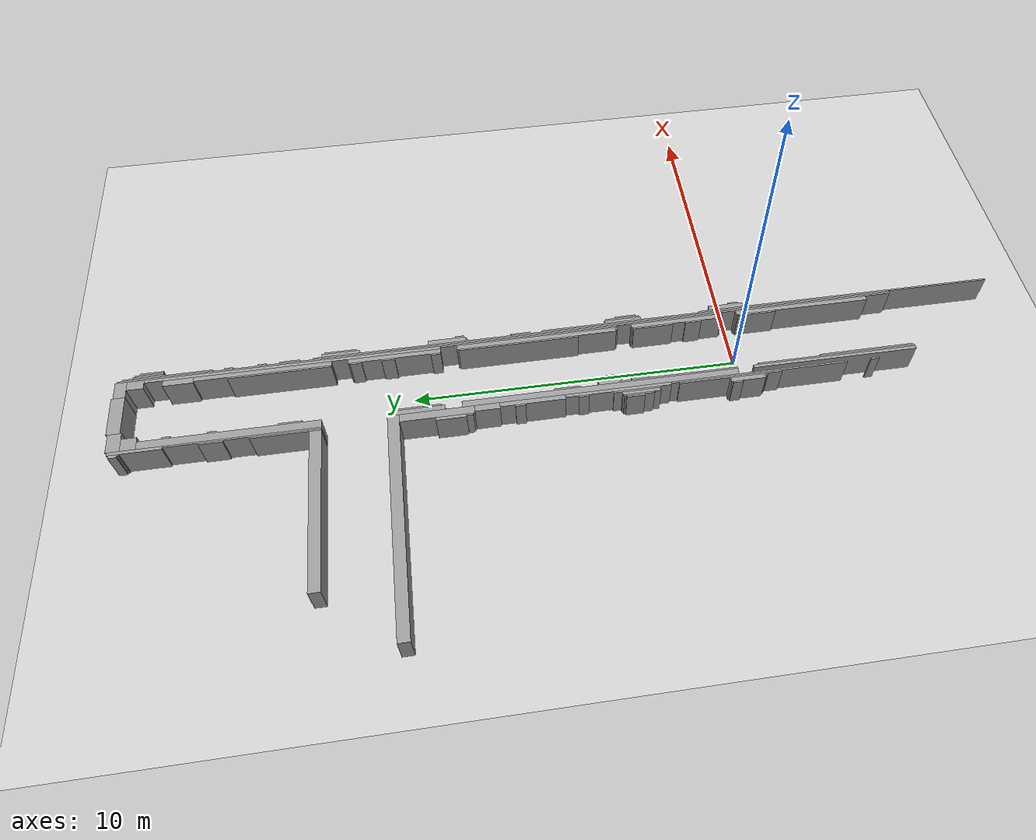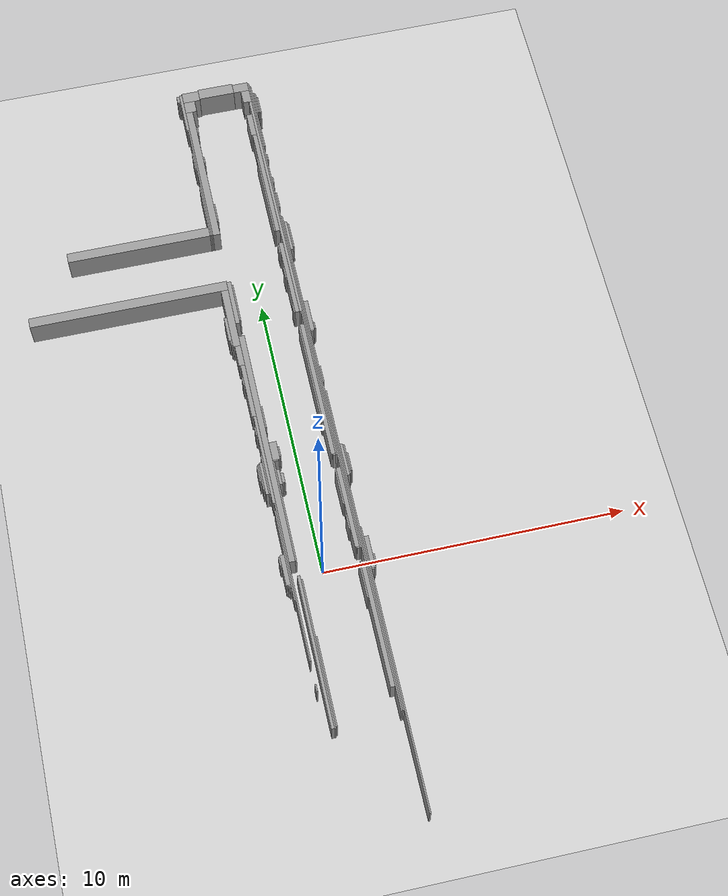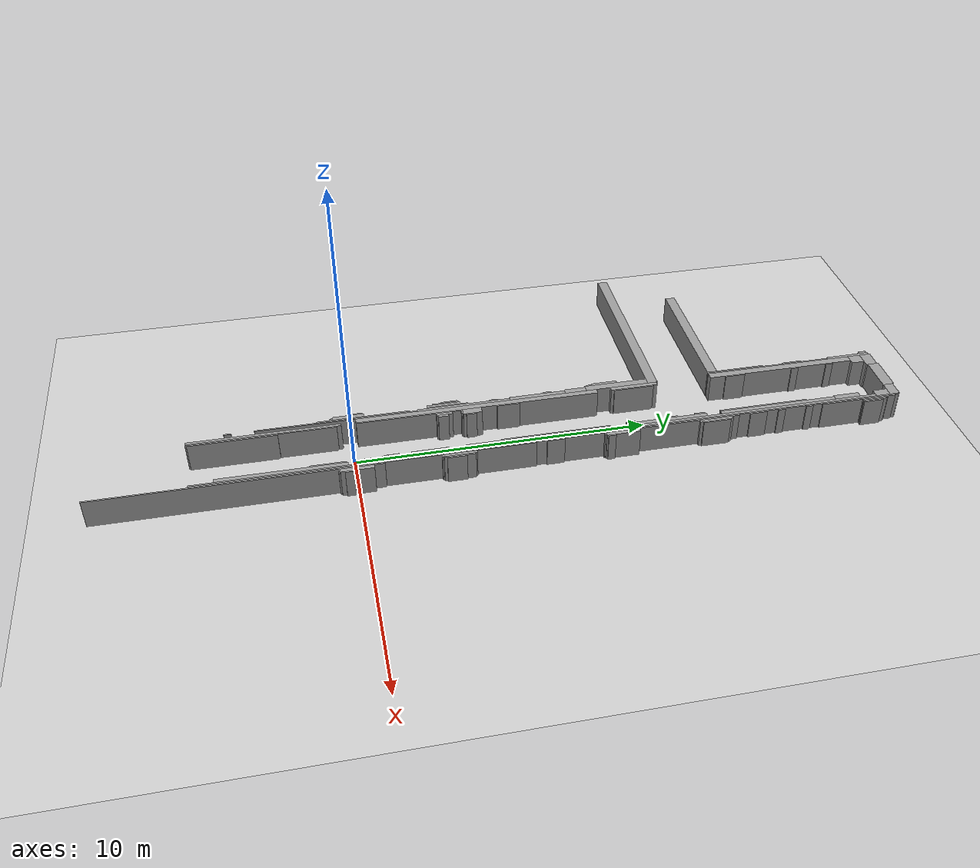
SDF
<sdf version="1.6">
 <world name="default">
  <include><uri>model://ground_plane</uri></include>
  <include><uri>model://sun</uri></include>
  <model name="wall_14">
   <static>1</static>
   <pose>0.07500000000000284 18.600000000000005 0.5 0 0 0</pose>
   <link name="link">
    <collision name="collision"><geometry><box><size>1.25 0.4 1.0</size></box></geometry></collision>
    <visual name="visual">
     <geometry><box><size>1.25 0.4 1.0</size></box></geometry>
     <material>
      <script><uri>file://media/materials/scripts/gazebo.material</uri><name>Gazebo/Grey</name></script>
     </material>
    </visual>
   </link>
  </model>
  <model name="wall_15">
   <static>1</static>
   <pose>-0.8499999999999943 18.55 0.5 0 0 0</pose>
   <link name="link">
    <collision name="collision">
     <geometry><box><size>0.6000000000000001 0.4 1.0</size></box></geometry>
    </collision>
    <visual name="visual">
     <geometry><box><size>0.6000000000000001 0.4 1.0</size></box></geometry>
     <material>
      <script><uri>file://media/materials/scripts/gazebo.material</uri><name>Gazebo/Grey</name></script>
     </material>
    </visual>
   </link>
  </model>
  <model name="wall_16">
   <static>1</static>
   <pose>0.9750000000000014 18.575000000000006 0.5 0 0 0</pose>
   <link name="link">
    <collision name="collision">
     <geometry><box><size>0.55 0.35000000000000003 1.0</size></box></geometry>
    </collision>
    <visual name="visual">
     <geometry><box><size>0.55 0.35000000000000003 1.0</size></box></geometry>
     <material>
      <script><uri>file://media/materials/scripts/gazebo.material</uri><name>Gazebo/Grey</name></script>
     </material>
    </visual>
   </link>
  </model>
  <model name="wall_19">
   <static>1</static>
   <pose>-1.1999999999999957 17.925 0.5 0 0 0</pose>
   <link name="link">
    <collision name="collision"><geometry><box><size>0.1 1.55 1.0</size></box></geometry></collision>
    <visual name="visual">
     <geometry><box><size>0.1 1.55 1.0</size></box></geometry>
     <material>
      <script><uri>file://media/materials/scripts/gazebo.material</uri><name>Gazebo/Grey</name></script>
     </material>
    </visual>
   </link>
  </model>
  <model name="wall_20">
   <static>1</static>
   <pose>1.2750000000000057 9.45 0.5 0 0 0</pose>
   <link name="link">
    <collision name="collision"><geometry><box><size>0.05 18.5 1.0</size></box></geometry></collision>
    <visual name="visual">
     <geometry><box><size>0.05 18.5 1.0</size></box></geometry>
     <material>
      <script><uri>file://media/materials/scripts/gazebo.material</uri><name>Gazebo/Grey</name></script>
     </material>
    </visual>
   </link>
  </model>
  <model name="wall_22">
   <static>1</static>
   <pose>-1.2999999999999972 18.525000000000002 0.5 0 0 0</pose>
   <link name="link">
    <collision name="collision"><geometry><box><size>0.1 0.25 1.0</size></box></geometry></collision>
    <visual name="visual">
     <geometry><box><size>0.1 0.25 1.0</size></box></geometry>
     <material>
      <script><uri>file://media/materials/scripts/gazebo.material</uri><name>Gazebo/Grey</name></script>
     </material>
    </visual>
   </link>
  </model>
  <model name="wall_23">
   <static>1</static>
   <pose>1.3250000000000028 17.225000000000005 0.5 0 0 0</pose>
   <link name="link">
    <collision name="collision">
     <geometry><box><size>0.05 2.6500000000000004 1.0</size></box></geometry>
    </collision>
    <visual name="visual">
     <geometry><box><size>0.05 2.6500000000000004 1.0</size></box></geometry>
     <material>
      <script><uri>file://media/materials/scripts/gazebo.material</uri><name>Gazebo/Grey</name></script>
     </material>
    </visual>
   </link>
  </model>
  <model name="wall_24">
   <static>1</static>
   <pose>-1.2749999999999986 18.375000000000004 0.5 0 0 0</pose>
   <link name="link">
    <collision name="collision"><geometry><box><size>0.05 0.05 1.0</size></box></geometry></collision>
    <visual name="visual">
     <geometry><box><size>0.05 0.05 1.0</size></box></geometry>
     <material>
      <script><uri>file://media/materials/scripts/gazebo.material</uri><name>Gazebo/Grey</name></script>
     </material>
    </visual>
   </link>
  </model>
  <model name="wall_25">
   <static>1</static>
   <pose>1.1000000000000014 18.150000000000002 0.5 0 0 0</pose>
   <link name="link">
    <collision name="collision">
     <geometry><box><size>0.30000000000000004 0.5 1.0</size></box></geometry>
    </collision>
    <visual name="visual">
     <geometry><box><size>0.30000000000000004 0.5 1.0</size></box></geometry>
     <material>
      <script><uri>file://media/materials/scripts/gazebo.material</uri><name>Gazebo/Grey</name></script>
     </material>
    </visual>
   </link>
  </model>
  <model name="wall_26">
   <static>1</static>
   <pose>-0.9499999999999957 18.125000000000004 0.5 0 0 0</pose>
   <link name="link">
    <collision name="collision"><geometry><box><size>0.4 0.45 1.0</size></box></geometry></collision>
    <visual name="visual">
     <geometry><box><size>0.4 0.45 1.0</size></box></geometry>
     <material>
      <script><uri>file://media/materials/scripts/gazebo.material</uri><name>Gazebo/Grey</name></script>
     </material>
    </visual>
   </link>
  </model>
  <model name="wall_27">
   <static>1</static>
   <pose>1.375000000000007 17.8 0.5 0 0 0</pose>
   <link name="link">
    <collision name="collision"><geometry><box><size>0.05 0.9 1.0</size></box></geometry></collision>
    <visual name="visual">
     <geometry><box><size>0.05 0.9 1.0</size></box></geometry>
     <material>
      <script><uri>file://media/materials/scripts/gazebo.material</uri><name>Gazebo/Grey</name></script>
     </material>
    </visual>
   </link>
  </model>
  <model name="wall_28">
   <static>1</static>
   <pose>1.4250000000000043 17.775000000000002 0.5 0 0 0</pose>
   <link name="link">
    <collision name="collision">
     <geometry><box><size>0.05 0.8500000000000001 1.0</size></box></geometry>
    </collision>
    <visual name="visual">
     <geometry><box><size>0.05 0.8500000000000001 1.0</size></box></geometry>
     <material>
      <script><uri>file://media/materials/scripts/gazebo.material</uri><name>Gazebo/Grey</name></script>
     </material>
    </visual>
   </link>
  </model>
  <model name="wall_30">
   <static>1</static>
   <pose>1.4750000000000014 17.700000000000006 0.5 0 0 0</pose>
   <link name="link">
    <collision name="collision">
     <geometry><box><size>0.05 0.7000000000000001 1.0</size></box></geometry>
    </collision>
    <visual name="visual">
     <geometry><box><size>0.05 0.7000000000000001 1.0</size></box></geometry>
     <material>
      <script><uri>file://media/materials/scripts/gazebo.material</uri><name>Gazebo/Grey</name></script>
     </material>
    </visual>
   </link>
  </model>
  <model name="wall_31">
   <static>1</static>
   <pose>-1.0249999999999986 15.275000000000002 0.5 0 0 0</pose>
   <link name="link">
    <collision name="collision"><geometry><box><size>0.25 5.25 1.0</size></box></geometry></collision>
    <visual name="visual">
     <geometry><box><size>0.25 5.25 1.0</size></box></geometry>
     <material>
      <script><uri>file://media/materials/scripts/gazebo.material</uri><name>Gazebo/Grey</name></script>
     </material>
    </visual>
   </link>
  </model>
  <model name="wall_32">
   <static>1</static>
   <pose>1.2000000000000028 13.475000000000005 0.5 0 0 0</pose>
   <link name="link">
    <collision name="collision"><geometry><box><size>0.1 8.85 1.0</size></box></geometry></collision>
    <visual name="visual">
     <geometry><box><size>0.1 8.85 1.0</size></box></geometry>
     <material>
      <script><uri>file://media/materials/scripts/gazebo.material</uri><name>Gazebo/Grey</name></script>
     </material>
    </visual>
   </link>
  </model>
  <model name="wall_37">
   <static>1</static>
   <pose>1.0500000000000043 16.900000000000002 0.5 0 0 0</pose>
   <link name="link">
    <collision name="collision"><geometry><box><size>0.2 0.9 1.0</size></box></geometry></collision>
    <visual name="visual">
     <geometry><box><size>0.2 0.9 1.0</size></box></geometry>
     <material>
      <script><uri>file://media/materials/scripts/gazebo.material</uri><name>Gazebo/Grey</name></script>
     </material>
    </visual>
   </link>
  </model>
  <model name="wall_38">
   <static>1</static>
   <pose>-0.8749999999999929 17.075000000000006 0.5 0 0 0</pose>
   <link name="link">
    <collision name="collision"><geometry><box><size>0.05 0.25 1.0</size></box></geometry></collision>
    <visual name="visual">
     <geometry><box><size>0.05 0.25 1.0</size></box></geometry>
     <material>
      <script><uri>file://media/materials/scripts/gazebo.material</uri><name>Gazebo/Grey</name></script>
     </material>
    </visual>
   </link>
  </model>
  <model name="wall_39">
   <static>1</static>
   <pose>-1.1749999999999972 14.900000000000002 0.5 0 0 0</pose>
   <link name="link">
    <collision name="collision"><geometry><box><size>0.05 4.5 1.0</size></box></geometry></collision>
    <visual name="visual">
     <geometry><box><size>0.05 4.5 1.0</size></box></geometry>
     <material>
      <script><uri>file://media/materials/scripts/gazebo.material</uri><name>Gazebo/Grey</name></script>
     </material>
    </visual>
   </link>
  </model>
  <model name="wall_43">
   <static>1</static>
   <pose>1.0750000000000028 14.400000000000002 0.5 0 0 0</pose>
   <link name="link">
    <collision name="collision">
     <geometry><box><size>0.15000000000000002 4.1000000000000005 1.0</size></box></geometry>
    </collision>
    <visual name="visual">
     <geometry><box><size>0.15000000000000002 4.1000000000000005 1.0</size></box></geometry>
     <material>
      <script><uri>file://media/materials/scripts/gazebo.material</uri><name>Gazebo/Grey</name></script>
     </material>
    </visual>
   </link>
  </model>
  <model name="wall_45">
   <static>1</static>
   <pose>-1.2249999999999943 15.8 0.5 0 0 0</pose>
   <link name="link">
    <collision name="collision">
     <geometry><box><size>0.05 0.7000000000000001 1.0</size></box></geometry>
    </collision>
    <visual name="visual">
     <geometry><box><size>0.05 0.7000000000000001 1.0</size></box></geometry>
     <material>
      <script><uri>file://media/materials/scripts/gazebo.material</uri><name>Gazebo/Grey</name></script>
     </material>
    </visual>
   </link>
  </model>
  <model name="wall_47">
   <static>1</static>
   <pose>-0.8749999999999929 15.775000000000002 0.5 0 0 0</pose>
   <link name="link">
    <collision name="collision"><geometry><box><size>0.05 0.25 1.0</size></box></geometry></collision>
    <visual name="visual">
     <geometry><box><size>0.05 0.25 1.0</size></box></geometry>
     <material>
      <script><uri>file://media/materials/scripts/gazebo.material</uri><name>Gazebo/Grey</name></script>
     </material>
    </visual>
   </link>
  </model>
  <model name="wall_48">
   <static>1</static>
   <pose>1.3250000000000028 15.425 0.5 0 0 0</pose>
   <link name="link">
    <collision name="collision"><geometry><box><size>0.05 0.25 1.0</size></box></geometry></collision>
    <visual name="visual">
     <geometry><box><size>0.05 0.25 1.0</size></box></geometry>
     <material>
      <script><uri>file://media/materials/scripts/gazebo.material</uri><name>Gazebo/Grey</name></script>
     </material>
    </visual>
   </link>
  </model>
  <model name="wall_49">
   <static>1</static>
   <pose>0.9750000000000014 13.900000000000002 0.5 0 0 0</pose>
   <link name="link">
    <collision name="collision"><geometry><box><size>0.05 3.1 1.0</size></box></geometry></collision>
    <visual name="visual">
     <geometry><box><size>0.05 3.1 1.0</size></box></geometry>
     <material>
      <script><uri>file://media/materials/scripts/gazebo.material</uri><name>Gazebo/Grey</name></script>
     </material>
    </visual>
   </link>
  </model>
  <model name="wall_53">
   <static>1</static>
   <pose>-1.2249999999999943 13.675 0.5 0 0 0</pose>
   <link name="link">
    <collision name="collision">
     <geometry><box><size>0.05 2.0500000000000003 1.0</size></box></geometry>
    </collision>
    <visual name="visual">
     <geometry><box><size>0.05 2.0500000000000003 1.0</size></box></geometry>
     <material>
      <script><uri>file://media/materials/scripts/gazebo.material</uri><name>Gazebo/Grey</name></script>
     </material>
    </visual>
   </link>
  </model>
  <model name="wall_55">
   <static>1</static>
   <pose>1.3250000000000028 14.425 0.5 0 0 0</pose>
   <link name="link">
    <collision name="collision"><geometry><box><size>0.05 0.25 1.0</size></box></geometry></collision>
    <visual name="visual">
     <geometry><box><size>0.05 0.25 1.0</size></box></geometry>
     <material>
      <script><uri>file://media/materials/scripts/gazebo.material</uri><name>Gazebo/Grey</name></script>
     </material>
    </visual>
   </link>
  </model>
  <model name="wall_59">
   <static>1</static>
   <pose>-0.8749999999999929 13.55 0.5 0 0 0</pose>
   <link name="link">
    <collision name="collision">
     <geometry><box><size>0.05 0.7000000000000001 1.0</size></box></geometry>
    </collision>
    <visual name="visual">
     <geometry><box><size>0.05 0.7000000000000001 1.0</size></box></geometry>
     <material>
      <script><uri>file://media/materials/scripts/gazebo.material</uri><name>Gazebo/Grey</name></script>
     </material>
    </visual>
   </link>
  </model>
  <model name="wall_60">
   <static>1</static>
   <pose>1.3250000000000028 13.600000000000005 0.5 0 0 0</pose>
   <link name="link">
    <collision name="collision">
     <geometry><box><size>0.05 0.6000000000000001 1.0</size></box></geometry>
    </collision>
    <visual name="visual">
     <geometry><box><size>0.05 0.6000000000000001 1.0</size></box></geometry>
     <material>
      <script><uri>file://media/materials/scripts/gazebo.material</uri><name>Gazebo/Grey</name></script>
     </material>
    </visual>
   </link>
  </model>
  <model name="wall_125">
   <static>1</static>
   <pose>-3.7249999999999943 12.825000000000006 0.5 0 0 0</pose>
   <link name="link">
    <collision name="collision">
     <geometry><box><size>4.95 0.35000000000000003 1.0</size></box></geometry>
    </collision>
    <visual name="visual">
     <geometry><box><size>4.95 0.35000000000000003 1.0</size></box></geometry>
     <material>
      <script><uri>file://media/materials/scripts/gazebo.material</uri><name>Gazebo/Grey</name></script>
     </material>
    </visual>
   </link>
  </model>
  <model name="wall_134">
   <static>1</static>
   <pose>1.3250000000000028 3.8000000000000007 0.5 0 0 0</pose>
   <link name="link">
    <collision name="collision"><geometry><box><size>0.05 18.2 1.0</size></box></geometry></collision>
    <visual name="visual">
     <geometry><box><size>0.05 18.2 1.0</size></box></geometry>
     <material>
      <script><uri>file://media/materials/scripts/gazebo.material</uri><name>Gazebo/Grey</name></script>
     </material>
    </visual>
   </link>
  </model>
  <model name="wall_145">
   <static>1</static>
   <pose>1.4000000000000057 12.075000000000006 0.5 0 0 0</pose>
   <link name="link">
    <collision name="collision">
     <geometry><box><size>0.1 1.1500000000000001 1.0</size></box></geometry>
    </collision>
    <visual name="visual">
     <geometry><box><size>0.1 1.1500000000000001 1.0</size></box></geometry>
     <material>
      <script><uri>file://media/materials/scripts/gazebo.material</uri><name>Gazebo/Grey</name></script>
     </material>
    </visual>
   </link>
  </model>
  <model name="wall_147">
   <static>1</static>
   <pose>1.4750000000000014 12.075000000000006 0.5 0 0 0</pose>
   <link name="link">
    <collision name="collision">
     <geometry><box><size>0.05 0.9500000000000001 1.0</size></box></geometry>
    </collision>
    <visual name="visual">
     <geometry><box><size>0.05 0.9500000000000001 1.0</size></box></geometry>
     <material>
      <script><uri>file://media/materials/scripts/gazebo.material</uri><name>Gazebo/Grey</name></script>
     </material>
    </visual>
   </link>
  </model>
  <model name="wall_150">
   <static>1</static>
   <pose>1.0750000000000028 10.45 0.5 0 0 0</pose>
   <link name="link">
    <collision name="collision">
     <geometry><box><size>0.15000000000000002 2.8000000000000003 1.0</size></box></geometry>
    </collision>
    <visual name="visual">
     <geometry><box><size>0.15000000000000002 2.8000000000000003 1.0</size></box></geometry>
     <material>
      <script><uri>file://media/materials/scripts/gazebo.material</uri><name>Gazebo/Grey</name></script>
     </material>
    </visual>
   </link>
  </model>
  <model name="wall_151">
   <static>1</static>
   <pose>0.9750000000000014 11.625000000000004 0.5 0 0 0</pose>
   <link name="link">
    <collision name="collision">
     <geometry><box><size>0.05 0.35000000000000003 1.0</size></box></geometry>
    </collision>
    <visual name="visual">
     <geometry><box><size>0.05 0.35000000000000003 1.0</size></box></geometry>
     <material>
      <script><uri>file://media/materials/scripts/gazebo.material</uri><name>Gazebo/Grey</name></script>
     </material>
    </visual>
   </link>
  </model>
  <model name="wall_214">
   <static>1</static>
   <pose>0.9750000000000014 10.650000000000002 0.5 0 0 0</pose>
   <link name="link">
    <collision name="collision"><geometry><box><size>0.05 0.4 1.0</size></box></geometry></collision>
    <visual name="visual">
     <geometry><box><size>0.05 0.4 1.0</size></box></geometry>
     <material>
      <script><uri>file://media/materials/scripts/gazebo.material</uri><name>Gazebo/Grey</name></script>
     </material>
    </visual>
   </link>
  </model>
  <model name="wall_225">
   <static>1</static>
   <pose>-4.449999999999996 10.575 0.5 0 0 0</pose>
   <link name="link">
    <collision name="collision">
     <geometry><box><size>6.800000000000001 0.35000000000000003 1.0</size></box></geometry>
    </collision>
    <visual name="visual">
     <geometry><box><size>6.800000000000001 0.35000000000000003 1.0</size></box></geometry>
     <material>
      <script><uri>file://media/materials/scripts/gazebo.material</uri><name>Gazebo/Grey</name></script>
     </material>
    </visual>
   </link>
  </model>
  <model name="wall_227">
   <static>1</static>
   <pose>-0.9749999999999943 9.875000000000004 0.5 0 0 0</pose>
   <link name="link">
    <collision name="collision">
     <geometry><box><size>0.15000000000000002 1.6500000000000001 1.0</size></box></geometry>
    </collision>
    <visual name="visual">
     <geometry><box><size>0.15000000000000002 1.6500000000000001 1.0</size></box></geometry>
     <material>
      <script><uri>file://media/materials/scripts/gazebo.material</uri><name>Gazebo/Grey</name></script>
     </material>
    </visual>
   </link>
  </model>
  <model name="wall_231">
   <static>1</static>
   <pose>-0.8749999999999929 9.850000000000005 0.5 0 0 0</pose>
   <link name="link">
    <collision name="collision">
     <geometry><box><size>0.05 1.4000000000000001 1.0</size></box></geometry>
    </collision>
    <visual name="visual">
     <geometry><box><size>0.05 1.4000000000000001 1.0</size></box></geometry>
     <material>
      <script><uri>file://media/materials/scripts/gazebo.material</uri><name>Gazebo/Grey</name></script>
     </material>
    </visual>
   </link>
  </model>
  <model name="wall_235">
   <static>1</static>
   <pose>-1.1749999999999972 9.3 0.5 0 0 0</pose>
   <link name="link">
    <collision name="collision"><geometry><box><size>0.25 2.2 1.0</size></box></geometry></collision>
    <visual name="visual">
     <geometry><box><size>0.25 2.2 1.0</size></box></geometry>
     <material>
      <script><uri>file://media/materials/scripts/gazebo.material</uri><name>Gazebo/Grey</name></script>
     </material>
    </visual>
   </link>
  </model>
  <model name="wall_246">
   <static>1</static>
   <pose>1.4250000000000043 8.825 0.5 0 0 0</pose>
   <link name="link">
    <collision name="collision">
     <geometry><box><size>0.15000000000000002 1.1500000000000001 1.0</size></box></geometry>
    </collision>
    <visual name="visual">
     <geometry><box><size>0.15000000000000002 1.1500000000000001 1.0</size></box></geometry>
     <material>
      <script><uri>file://media/materials/scripts/gazebo.material</uri><name>Gazebo/Grey</name></script>
     </material>
    </visual>
   </link>
  </model>
  <model name="wall_248">
   <static>1</static>
   <pose>-1.3499999999999943 8.900000000000002 0.5 0 0 0</pose>
   <link name="link">
    <collision name="collision"><geometry><box><size>0.1 0.9 1.0</size></box></geometry></collision>
    <visual name="visual">
     <geometry><box><size>0.1 0.9 1.0</size></box></geometry>
     <material>
      <script><uri>file://media/materials/scripts/gazebo.material</uri><name>Gazebo/Grey</name></script>
     </material>
    </visual>
   </link>
  </model>
  <model name="wall_249">
   <static>1</static>
   <pose>0.9750000000000014 9.2 0.5 0 0 0</pose>
   <link name="link">
    <collision name="collision">
     <geometry><box><size>0.05 0.30000000000000004 1.0</size></box></geometry>
    </collision>
    <visual name="visual">
     <geometry><box><size>0.05 0.30000000000000004 1.0</size></box></geometry>
     <material>
      <script><uri>file://media/materials/scripts/gazebo.material</uri><name>Gazebo/Grey</name></script>
     </material>
    </visual>
   </link>
  </model>
  <model name="wall_254">
   <static>1</static>
   <pose>1.2250000000000014 6.300000000000001 0.5 0 0 0</pose>
   <link name="link">
    <collision name="collision"><geometry><box><size>0.05 5.5 1.0</size></box></geometry></collision>
    <visual name="visual">
     <geometry><box><size>0.05 5.5 1.0</size></box></geometry>
     <material>
      <script><uri>file://media/materials/scripts/gazebo.material</uri><name>Gazebo/Grey</name></script>
     </material>
    </visual>
   </link>
  </model>
  <model name="wall_258">
   <static>1</static>
   <pose>-0.9499999999999957 4.3750000000000036 0.5 0 0 0</pose>
   <link name="link">
    <collision name="collision"><geometry><box><size>0.2 8.35 1.0</size></box></geometry></collision>
    <visual name="visual">
     <geometry><box><size>0.2 8.35 1.0</size></box></geometry>
     <material>
      <script><uri>file://media/materials/scripts/gazebo.material</uri><name>Gazebo/Grey</name></script>
     </material>
    </visual>
   </link>
  </model>
  <model name="wall_259">
   <static>1</static>
   <pose>1.125000000000007 6.074999999999999 0.5 0 0 0</pose>
   <link name="link">
    <collision name="collision">
     <geometry><box><size>0.15000000000000002 4.95 1.0</size></box></geometry>
    </collision>
    <visual name="visual">
     <geometry><box><size>0.15000000000000002 4.95 1.0</size></box></geometry>
     <material>
      <script><uri>file://media/materials/scripts/gazebo.material</uri><name>Gazebo/Grey</name></script>
     </material>
    </visual>
   </link>
  </model>
  <model name="wall_260">
   <static>1</static>
   <pose>1.5250000000000057 8.425 0.5 0 0 0</pose>
   <link name="link">
    <collision name="collision"><geometry><box><size>0.05 0.25 1.0</size></box></geometry></collision>
    <visual name="visual">
     <geometry><box><size>0.05 0.25 1.0</size></box></geometry>
     <material>
      <script><uri>file://media/materials/scripts/gazebo.material</uri><name>Gazebo/Grey</name></script>
     </material>
    </visual>
   </link>
  </model>
  <model name="wall_261">
   <static>1</static>
   <pose>1.0250000000000057 6.650000000000002 0.5 0 0 0</pose>
   <link name="link">
    <collision name="collision"><geometry><box><size>0.05 3.7 1.0</size></box></geometry></collision>
    <visual name="visual">
     <geometry><box><size>0.05 3.7 1.0</size></box></geometry>
     <material>
      <script><uri>file://media/materials/scripts/gazebo.material</uri><name>Gazebo/Grey</name></script>
     </material>
    </visual>
   </link>
  </model>
  <model name="wall_262">
   <static>1</static>
   <pose>-1.3249999999999957 8.350000000000005 0.5 0 0 0</pose>
   <link name="link">
    <collision name="collision"><geometry><box><size>0.05 0.2 1.0</size></box></geometry></collision>
    <visual name="visual">
     <geometry><box><size>0.05 0.2 1.0</size></box></geometry>
     <material>
      <script><uri>file://media/materials/scripts/gazebo.material</uri><name>Gazebo/Grey</name></script>
     </material>
    </visual>
   </link>
  </model>
  <model name="wall_264">
   <static>1</static>
   <pose>1.4000000000000057 8.225000000000005 0.5 0 0 0</pose>
   <link name="link">
    <collision name="collision"><geometry><box><size>0.1 0.05 1.0</size></box></geometry></collision>
    <visual name="visual">
     <geometry><box><size>0.1 0.05 1.0</size></box></geometry>
     <material>
      <script><uri>file://media/materials/scripts/gazebo.material</uri><name>Gazebo/Grey</name></script>
     </material>
    </visual>
   </link>
  </model>
  <model name="wall_265">
   <static>1</static>
   <pose>-1.1499999999999986 7.824999999999999 0.5 0 0 0</pose>
   <link name="link">
    <collision name="collision"><geometry><box><size>0.2 0.75 1.0</size></box></geometry></collision>
    <visual name="visual">
     <geometry><box><size>0.2 0.75 1.0</size></box></geometry>
     <material>
      <script><uri>file://media/materials/scripts/gazebo.material</uri><name>Gazebo/Grey</name></script>
     </material>
    </visual>
   </link>
  </model>
  <model name="wall_270">
   <static>1</static>
   <pose>-1.124999999999993 6.475000000000005 0.5 0 0 0</pose>
   <link name="link">
    <collision name="collision">
     <geometry><box><size>0.15000000000000002 1.9500000000000002 1.0</size></box></geometry>
    </collision>
    <visual name="visual">
     <geometry><box><size>0.15000000000000002 1.9500000000000002 1.0</size></box></geometry>
     <material>
      <script><uri>file://media/materials/scripts/gazebo.material</uri><name>Gazebo/Grey</name></script>
     </material>
    </visual>
   </link>
  </model>
  <model name="wall_272">
   <static>1</static>
   <pose>-1.2249999999999943 6.850000000000005 0.5 0 0 0</pose>
   <link name="link">
    <collision name="collision">
     <geometry><box><size>0.05 0.30000000000000004 1.0</size></box></geometry>
    </collision>
    <visual name="visual">
     <geometry><box><size>0.05 0.30000000000000004 1.0</size></box></geometry>
     <material>
      <script><uri>file://media/materials/scripts/gazebo.material</uri><name>Gazebo/Grey</name></script>
     </material>
    </visual>
   </link>
  </model>
  <model name="wall_273">
   <static>1</static>
   <pose>1.375000000000007 6.550000000000001 0.5 0 0 0</pose>
   <link name="link">
    <collision name="collision">
     <geometry><box><size>0.05 0.6000000000000001 1.0</size></box></geometry>
    </collision>
    <visual name="visual">
     <geometry><box><size>0.05 0.6000000000000001 1.0</size></box></geometry>
     <material>
      <script><uri>file://media/materials/scripts/gazebo.material</uri><name>Gazebo/Grey</name></script>
     </material>
    </visual>
   </link>
  </model>
  <model name="wall_277">
   <static>1</static>
   <pose>1.375000000000007 0.3000000000000007 0.5 0 0 0</pose>
   <link name="link">
    <collision name="collision">
     <geometry><box><size>0.05 11.200000000000001 1.0</size></box></geometry>
    </collision>
    <visual name="visual">
     <geometry><box><size>0.05 11.200000000000001 1.0</size></box></geometry>
     <material>
      <script><uri>file://media/materials/scripts/gazebo.material</uri><name>Gazebo/Grey</name></script>
     </material>
    </visual>
   </link>
  </model>
  <model name="wall_279">
   <static>1</static>
   <pose>-0.8249999999999957 5.400000000000002 0.5 0 0 0</pose>
   <link name="link">
    <collision name="collision"><geometry><box><size>0.05 0.8 1.0</size></box></geometry></collision>
    <visual name="visual">
     <geometry><box><size>0.05 0.8 1.0</size></box></geometry>
     <material>
      <script><uri>file://media/materials/scripts/gazebo.material</uri><name>Gazebo/Grey</name></script>
     </material>
    </visual>
   </link>
  </model>
  <model name="wall_280">
   <static>1</static>
   <pose>-1.0999999999999943 3.900000000000002 0.5 0 0 0</pose>
   <link name="link">
    <collision name="collision"><geometry><box><size>0.1 3.2 1.0</size></box></geometry></collision>
    <visual name="visual">
     <geometry><box><size>0.1 3.2 1.0</size></box></geometry>
     <material>
      <script><uri>file://media/materials/scripts/gazebo.material</uri><name>Gazebo/Grey</name></script>
     </material>
    </visual>
   </link>
  </model>
  <model name="wall_283">
   <static>1</static>
   <pose>-1.1749999999999972 4.949999999999999 0.5 0 0 0</pose>
   <link name="link">
    <collision name="collision">
     <geometry><box><size>0.05 0.30000000000000004 1.0</size></box></geometry>
    </collision>
    <visual name="visual">
     <geometry><box><size>0.05 0.30000000000000004 1.0</size></box></geometry>
     <material>
      <script><uri>file://media/materials/scripts/gazebo.material</uri><name>Gazebo/Grey</name></script>
     </material>
    </visual>
   </link>
  </model>
  <model name="wall_288">
   <static>1</static>
   <pose>-0.7249999999999943 4.1250000000000036 0.5 0 0 0</pose>
   <link name="link">
    <collision name="collision"><geometry><box><size>0.25 0.65 1.0</size></box></geometry></collision>
    <visual name="visual">
     <geometry><box><size>0.25 0.65 1.0</size></box></geometry>
     <material>
      <script><uri>file://media/materials/scripts/gazebo.material</uri><name>Gazebo/Grey</name></script>
     </material>
    </visual>
   </link>
  </model>
  <model name="wall_290">
   <static>1</static>
   <pose>-0.5749999999999957 4.075000000000003 0.5 0 0 0</pose>
   <link name="link">
    <collision name="collision">
     <geometry><box><size>0.05 0.35000000000000003 1.0</size></box></geometry>
    </collision>
    <visual name="visual">
     <geometry><box><size>0.05 0.35000000000000003 1.0</size></box></geometry>
     <material>
      <script><uri>file://media/materials/scripts/gazebo.material</uri><name>Gazebo/Grey</name></script>
     </material>
    </visual>
   </link>
  </model>
  <model name="wall_292">
   <static>1</static>
   <pose>-1.1749999999999972 3.3500000000000014 0.5 0 0 0</pose>
   <link name="link">
    <collision name="collision">
     <geometry><box><size>0.05 1.4000000000000001 1.0</size></box></geometry>
    </collision>
    <visual name="visual">
     <geometry><box><size>0.05 1.4000000000000001 1.0</size></box></geometry>
     <material>
      <script><uri>file://media/materials/scripts/gazebo.material</uri><name>Gazebo/Grey</name></script>
     </material>
    </visual>
   </link>
  </model>
  <model name="wall_293">
   <static>1</static>
   <pose>1.4500000000000028 3.325000000000003 0.5 0 0 0</pose>
   <link name="link">
    <collision name="collision">
     <geometry><box><size>0.1 1.1500000000000001 1.0</size></box></geometry>
    </collision>
    <visual name="visual">
     <geometry><box><size>0.1 1.1500000000000001 1.0</size></box></geometry>
     <material>
      <script><uri>file://media/materials/scripts/gazebo.material</uri><name>Gazebo/Grey</name></script>
     </material>
    </visual>
   </link>
  </model>
  <model name="wall_294">
   <static>1</static>
   <pose>1.5250000000000057 3.325000000000003 0.5 0 0 0</pose>
   <link name="link">
    <collision name="collision"><geometry><box><size>0.05 1.05 1.0</size></box></geometry></collision>
    <visual name="visual">
     <geometry><box><size>0.05 1.05 1.0</size></box></geometry>
     <material>
      <script><uri>file://media/materials/scripts/gazebo.material</uri><name>Gazebo/Grey</name></script>
     </material>
    </visual>
   </link>
  </model>
  <model name="wall_296">
   <static>1</static>
   <pose>-1.249999999999993 3.2250000000000014 0.5 0 0 0</pose>
   <link name="link">
    <collision name="collision">
     <geometry><box><size>0.1 1.1500000000000001 1.0</size></box></geometry>
    </collision>
    <visual name="visual">
     <geometry><box><size>0.1 1.1500000000000001 1.0</size></box></geometry>
     <material>
      <script><uri>file://media/materials/scripts/gazebo.material</uri><name>Gazebo/Grey</name></script>
     </material>
    </visual>
   </link>
  </model>
  <model name="wall_297">
   <static>1</static>
   <pose>-0.7499999999999929 3.775000000000002 0.5 0 0 0</pose>
   <link name="link">
    <collision name="collision"><geometry><box><size>0.2 0.05 1.0</size></box></geometry></collision>
    <visual name="visual">
     <geometry><box><size>0.2 0.05 1.0</size></box></geometry>
     <material>
      <script><uri>file://media/materials/scripts/gazebo.material</uri><name>Gazebo/Grey</name></script>
     </material>
    </visual>
   </link>
  </model>
  <model name="wall_300">
   <static>1</static>
   <pose>-1.3249999999999957 3.3000000000000007 0.5 0 0 0</pose>
   <link name="link">
    <collision name="collision"><geometry><box><size>0.05 0.9 1.0</size></box></geometry></collision>
    <visual name="visual">
     <geometry><box><size>0.05 0.9 1.0</size></box></geometry>
     <material>
      <script><uri>file://media/materials/scripts/gazebo.material</uri><name>Gazebo/Grey</name></script>
     </material>
    </visual>
   </link>
  </model>
  <model name="wall_301">
   <static>1</static>
   <pose>-0.8249999999999957 1.9750000000000014 0.5 0 0 0</pose>
   <link name="link">
    <collision name="collision">
     <geometry><box><size>0.05 3.5500000000000003 1.0</size></box></geometry>
    </collision>
    <visual name="visual">
     <geometry><box><size>0.05 3.5500000000000003 1.0</size></box></geometry>
     <material>
      <script><uri>file://media/materials/scripts/gazebo.material</uri><name>Gazebo/Grey</name></script>
     </material>
    </visual>
   </link>
  </model>
  <model name="wall_303">
   <static>1</static>
   <pose>-1.374999999999993 3.4250000000000007 0.5 0 0 0</pose>
   <link name="link">
    <collision name="collision"><geometry><box><size>0.05 0.55 1.0</size></box></geometry></collision>
    <visual name="visual">
     <geometry><box><size>0.05 0.55 1.0</size></box></geometry>
     <material>
      <script><uri>file://media/materials/scripts/gazebo.material</uri><name>Gazebo/Grey</name></script>
     </material>
    </visual>
   </link>
  </model>
  <model name="wall_305">
   <static>1</static>
   <pose>1.1500000000000057 3.575000000000003 0.5 0 0 0</pose>
   <link name="link">
    <collision name="collision"><geometry><box><size>0.1 0.05 1.0</size></box></geometry></collision>
    <visual name="visual">
     <geometry><box><size>0.1 0.05 1.0</size></box></geometry>
     <material>
      <script><uri>file://media/materials/scripts/gazebo.material</uri><name>Gazebo/Grey</name></script>
     </material>
    </visual>
   </link>
  </model>
  <model name="wall_306">
   <static>1</static>
   <pose>1.5750000000000028 3.2250000000000014 0.5 0 0 0</pose>
   <link name="link">
    <collision name="collision"><geometry><box><size>0.05 0.65 1.0</size></box></geometry></collision>
    <visual name="visual">
     <geometry><box><size>0.05 0.65 1.0</size></box></geometry>
     <material>
      <script><uri>file://media/materials/scripts/gazebo.material</uri><name>Gazebo/Grey</name></script>
     </material>
    </visual>
   </link>
  </model>
  <model name="wall_308">
   <static>1</static>
   <pose>-0.7499999999999929 3.1750000000000007 0.5 0 0 0</pose>
   <link name="link">
    <collision name="collision"><geometry><box><size>0.1 0.55 1.0</size></box></geometry></collision>
    <visual name="visual">
     <geometry><box><size>0.1 0.55 1.0</size></box></geometry>
     <material>
      <script><uri>file://media/materials/scripts/gazebo.material</uri><name>Gazebo/Grey</name></script>
     </material>
    </visual>
   </link>
  </model>
  <model name="wall_309">
   <static>1</static>
   <pose>-0.6499999999999986 3.1250000000000036 0.5 0 0 0</pose>
   <link name="link">
    <collision name="collision">
     <geometry><box><size>0.1 0.35000000000000003 1.0</size></box></geometry>
    </collision>
    <visual name="visual">
     <geometry><box><size>0.1 0.35000000000000003 1.0</size></box></geometry>
     <material>
      <script><uri>file://media/materials/scripts/gazebo.material</uri><name>Gazebo/Grey</name></script>
     </material>
    </visual>
   </link>
  </model>
  <model name="wall_312">
   <static>1</static>
   <pose>1.1750000000000043 1.6750000000000007 0.5 0 0 0</pose>
   <link name="link">
    <collision name="collision">
     <geometry><box><size>0.15000000000000002 2.85 1.0</size></box></geometry>
    </collision>
    <visual name="visual">
     <geometry><box><size>0.15000000000000002 2.85 1.0</size></box></geometry>
     <material>
      <script><uri>file://media/materials/scripts/gazebo.material</uri><name>Gazebo/Grey</name></script>
     </material>
    </visual>
   </link>
  </model>
  <model name="wall_314">
   <static>1</static>
   <pose>1.0750000000000028 2.4250000000000007 0.5 0 0 0</pose>
   <link name="link">
    <collision name="collision"><geometry><box><size>0.05 1.25 1.0</size></box></geometry></collision>
    <visual name="visual">
     <geometry><box><size>0.05 1.25 1.0</size></box></geometry>
     <material>
      <script><uri>file://media/materials/scripts/gazebo.material</uri><name>Gazebo/Grey</name></script>
     </material>
    </visual>
   </link>
  </model>
  <model name="wall_315">
   <static>1</static>
   <pose>-0.6749999999999972 2.9250000000000007 0.5 0 0 0</pose>
   <link name="link">
    <collision name="collision"><geometry><box><size>0.05 0.05 1.0</size></box></geometry></collision>
    <visual name="visual">
     <geometry><box><size>0.05 0.05 1.0</size></box></geometry>
     <material>
      <script><uri>file://media/materials/scripts/gazebo.material</uri><name>Gazebo/Grey</name></script>
     </material>
    </visual>
   </link>
  </model>
  <model name="wall_320">
   <static>1</static>
   <pose>-1.0749999999999957 -0.42499999999999716 0.5 0 0 0</pose>
   <link name="link">
    <collision name="collision"><geometry><box><size>0.05 5.45 1.0</size></box></geometry></collision>
    <visual name="visual">
     <geometry><box><size>0.05 5.45 1.0</size></box></geometry>
     <material>
      <script><uri>file://media/materials/scripts/gazebo.material</uri><name>Gazebo/Grey</name></script>
     </material>
    </visual>
   </link>
  </model>
  <model name="wall_322">
   <static>1</static>
   <pose>-1.124999999999993 0.4750000000000014 0.5 0 0 0</pose>
   <link name="link">
    <collision name="collision">
     <geometry><box><size>0.05 3.1500000000000004 1.0</size></box></geometry>
    </collision>
    <visual name="visual">
     <geometry><box><size>0.05 3.1500000000000004 1.0</size></box></geometry>
     <material>
      <script><uri>file://media/materials/scripts/gazebo.material</uri><name>Gazebo/Grey</name></script>
     </material>
    </visual>
   </link>
  </model>
  <model name="wall_327">
   <static>1</static>
   <pose>1.0750000000000028 1.1500000000000021 0.5 0 0 0</pose>
   <link name="link">
    <collision name="collision"><geometry><box><size>0.05 0.5 1.0</size></box></geometry></collision>
    <visual name="visual">
     <geometry><box><size>0.05 0.5 1.0</size></box></geometry>
     <material>
      <script><uri>file://media/materials/scripts/gazebo.material</uri><name>Gazebo/Grey</name></script>
     </material>
    </visual>
   </link>
  </model>
  <model name="wall_334">
   <static>1</static>
   <pose>1.4250000000000043 -3.8249999999999993 0.5 0 0 0</pose>
   <link name="link">
    <collision name="collision">
     <geometry><box><size>0.05 9.450000000000001 1.0</size></box></geometry>
    </collision>
    <visual name="visual">
     <geometry><box><size>0.05 9.450000000000001 1.0</size></box></geometry>
     <material>
      <script><uri>file://media/materials/scripts/gazebo.material</uri><name>Gazebo/Grey</name></script>
     </material>
    </visual>
   </link>
  </model>
  <model name="wall_337">
   <static>1</static>
   <pose>1.5250000000000057 3.552713678800501e-15 0.5 0 0 0</pose>
   <link name="link">
    <collision name="collision">
     <geometry><box><size>0.15000000000000002 1.1 1.0</size></box></geometry>
    </collision>
    <visual name="visual">
     <geometry><box><size>0.15000000000000002 1.1 1.0</size></box></geometry>
     <material>
      <script><uri>file://media/materials/scripts/gazebo.material</uri><name>Gazebo/Grey</name></script>
     </material>
    </visual>
   </link>
  </model>
  <model name="wall_339">
   <static>1</static>
   <pose>-1.2249999999999943 -0.02499999999999858 0.5 0 0 0</pose>
   <link name="link">
    <collision name="collision">
     <geometry><box><size>0.15000000000000002 1.05 1.0</size></box></geometry>
    </collision>
    <visual name="visual">
     <geometry><box><size>0.15000000000000002 1.05 1.0</size></box></geometry>
     <material>
      <script><uri>file://media/materials/scripts/gazebo.material</uri><name>Gazebo/Grey</name></script>
     </material>
    </visual>
   </link>
  </model>
  <model name="wall_341">
   <static>1</static>
   <pose>-1.3249999999999957 0.3000000000000007 0.5 0 0 0</pose>
   <link name="link">
    <collision name="collision">
     <geometry><box><size>0.05 0.30000000000000004 1.0</size></box></geometry>
    </collision>
    <visual name="visual">
     <geometry><box><size>0.05 0.30000000000000004 1.0</size></box></geometry>
     <material>
      <script><uri>file://media/materials/scripts/gazebo.material</uri><name>Gazebo/Grey</name></script>
     </material>
    </visual>
   </link>
  </model>
  <model name="wall_343">
   <static>1</static>
   <pose>1.2000000000000028 0.22500000000000142 0.5 0 0 0</pose>
   <link name="link">
    <collision name="collision"><geometry><box><size>0.1 0.05 1.0</size></box></geometry></collision>
    <visual name="visual">
     <geometry><box><size>0.1 0.05 1.0</size></box></geometry>
     <material>
      <script><uri>file://media/materials/scripts/gazebo.material</uri><name>Gazebo/Grey</name></script>
     </material>
    </visual>
   </link>
  </model>
  <model name="wall_347">
   <static>1</static>
   <pose>1.625000000000007 -0.24999999999999645 0.5 0 0 0</pose>
   <link name="link">
    <collision name="collision">
     <geometry><box><size>0.05 0.30000000000000004 1.0</size></box></geometry>
    </collision>
    <visual name="visual">
     <geometry><box><size>0.05 0.30000000000000004 1.0</size></box></geometry>
     <material>
      <script><uri>file://media/materials/scripts/gazebo.material</uri><name>Gazebo/Grey</name></script>
     </material>
    </visual>
   </link>
  </model>
  <model name="wall_349">
   <static>1</static>
   <pose>1.2250000000000014 -2.3749999999999964 0.5 0 0 0</pose>
   <link name="link">
    <collision name="collision">
     <geometry><box><size>0.15000000000000002 4.25 1.0</size></box></geometry>
    </collision>
    <visual name="visual">
     <geometry><box><size>0.15000000000000002 4.25 1.0</size></box></geometry>
     <material>
      <script><uri>file://media/materials/scripts/gazebo.material</uri><name>Gazebo/Grey</name></script>
     </material>
    </visual>
   </link>
  </model>
  <model name="wall_350">
   <static>1</static>
   <pose>-0.8499999999999943 -2.849999999999998 0.5 0 0 0</pose>
   <link name="link">
    <collision name="collision">
     <geometry><box><size>0.1 5.1000000000000005 1.0</size></box></geometry>
    </collision>
    <visual name="visual">
     <geometry><box><size>0.1 5.1000000000000005 1.0</size></box></geometry>
     <material>
      <script><uri>file://media/materials/scripts/gazebo.material</uri><name>Gazebo/Grey</name></script>
     </material>
    </visual>
   </link>
  </model>
  <model name="wall_351">
   <static>1</static>
   <pose>1.125000000000007 -0.8999999999999986 0.5 0 0 0</pose>
   <link name="link">
    <collision name="collision">
     <geometry><box><size>0.05 1.2000000000000002 1.0</size></box></geometry>
    </collision>
    <visual name="visual">
     <geometry><box><size>0.05 1.2000000000000002 1.0</size></box></geometry>
     <material>
      <script><uri>file://media/materials/scripts/gazebo.material</uri><name>Gazebo/Grey</name></script>
     </material>
    </visual>
   </link>
  </model>
  <model name="wall_353">
   <static>1</static>
   <pose>-0.7749999999999986 -2.924999999999997 0.5 0 0 0</pose>
   <link name="link">
    <collision name="collision"><geometry><box><size>0.05 4.95 1.0</size></box></geometry></collision>
    <visual name="visual">
     <geometry><box><size>0.05 4.95 1.0</size></box></geometry>
     <material>
      <script><uri>file://media/materials/scripts/gazebo.material</uri><name>Gazebo/Grey</name></script>
     </material>
    </visual>
   </link>
  </model>
  <model name="wall_354">
   <static>1</static>
   <pose>-1.1999999999999957 -0.5749999999999993 0.5 0 0 0</pose>
   <link name="link">
    <collision name="collision"><geometry><box><size>0.1 0.05 1.0</size></box></geometry></collision>
    <visual name="visual">
     <geometry><box><size>0.1 0.05 1.0</size></box></geometry>
     <material>
      <script><uri>file://media/materials/scripts/gazebo.material</uri><name>Gazebo/Grey</name></script>
     </material>
    </visual>
   </link>
  </model>
  <model name="wall_355">
   <static>1</static>
   <pose>1.500000000000007 -0.5749999999999993 0.5 0 0 0</pose>
   <link name="link">
    <collision name="collision"><geometry><box><size>0.1 0.05 1.0</size></box></geometry></collision>
    <visual name="visual">
     <geometry><box><size>0.1 0.05 1.0</size></box></geometry>
     <material>
      <script><uri>file://media/materials/scripts/gazebo.material</uri><name>Gazebo/Grey</name></script>
     </material>
    </visual>
   </link>
  </model>
  <model name="wall_356">
   <static>1</static>
   <pose>-1.1749999999999972 -0.6249999999999964 0.5 0 0 0</pose>
   <link name="link">
    <collision name="collision"><geometry><box><size>0.05 0.05 1.0</size></box></geometry></collision>
    <visual name="visual">
     <geometry><box><size>0.05 0.05 1.0</size></box></geometry>
     <material>
      <script><uri>file://media/materials/scripts/gazebo.material</uri><name>Gazebo/Grey</name></script>
     </material>
    </visual>
   </link>
  </model>
  <model name="wall_363">
   <static>1</static>
   <pose>-0.7249999999999943 -3.8749999999999964 0.5 0 0 0</pose>
   <link name="link">
    <collision name="collision"><geometry><box><size>0.05 2.95 1.0</size></box></geometry></collision>
    <visual name="visual">
     <geometry><box><size>0.05 2.95 1.0</size></box></geometry>
     <material>
      <script><uri>file://media/materials/scripts/gazebo.material</uri><name>Gazebo/Grey</name></script>
     </material>
    </visual>
   </link>
  </model>
  <model name="wall_369">
   <static>1</static>
   <pose>-1.0749999999999957 -4.024999999999999 0.5 0 0 0</pose>
   <link name="link">
    <collision name="collision"><geometry><box><size>0.05 0.25 1.0</size></box></geometry></collision>
    <visual name="visual">
     <geometry><box><size>0.05 0.25 1.0</size></box></geometry>
     <material>
      <script><uri>file://media/materials/scripts/gazebo.material</uri><name>Gazebo/Grey</name></script>
     </material>
    </visual>
   </link>
  </model>
 </world>
</sdf>
